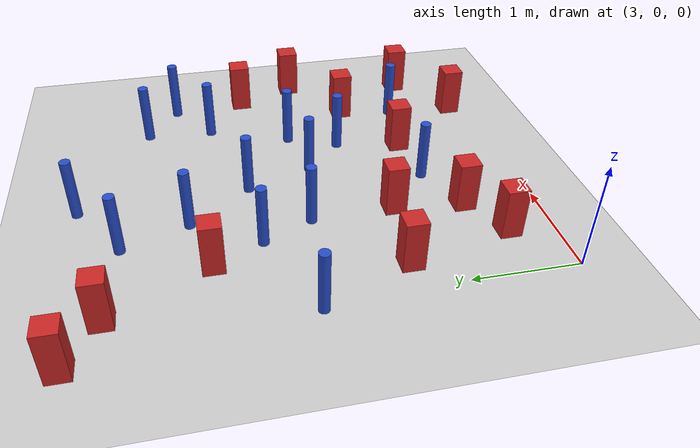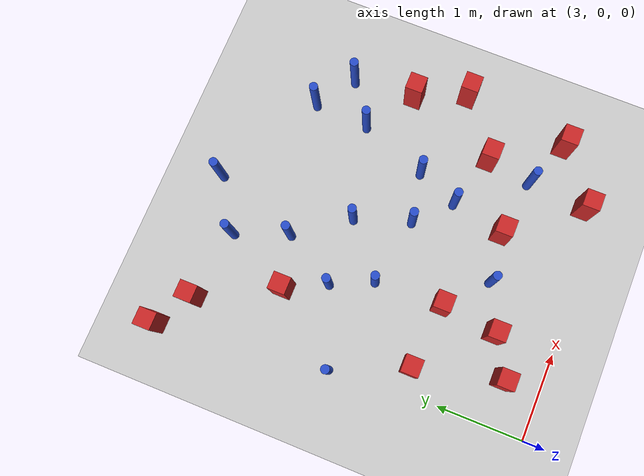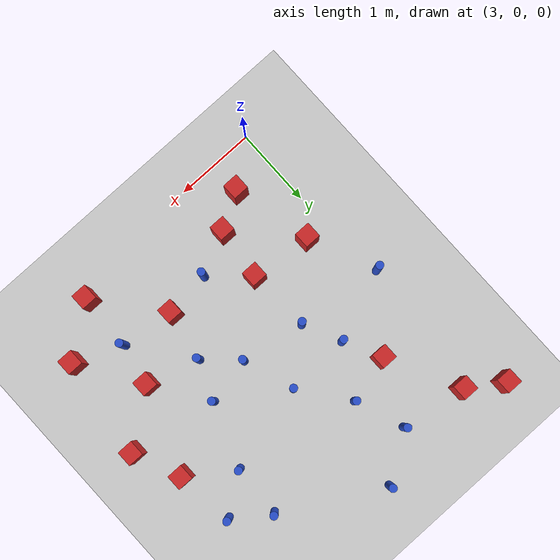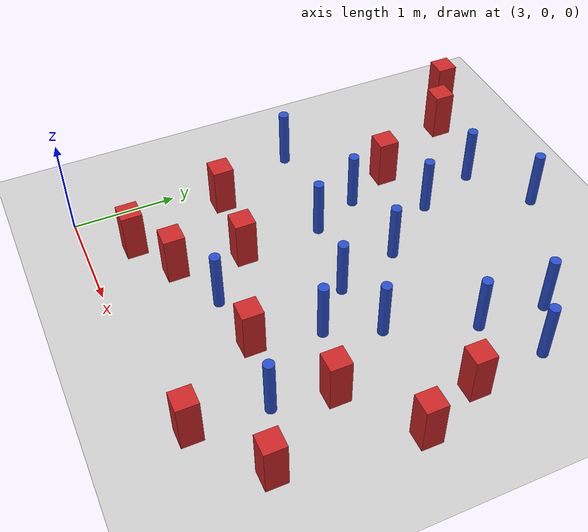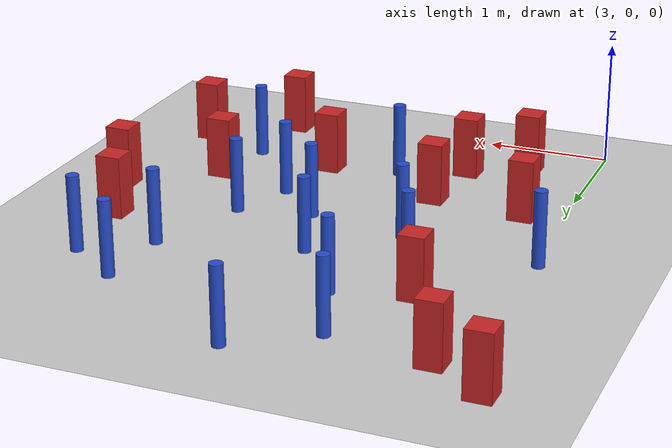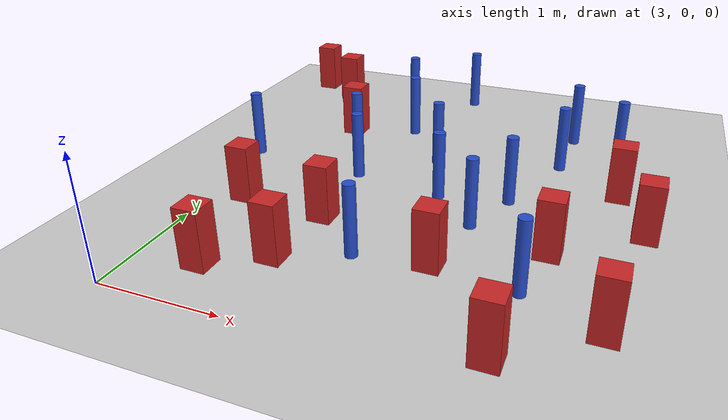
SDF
<sdf version="1.6">
 <world name="default">
  <model name="ground_plane">
   <static>1</static>
   <link name="link">
    <collision name="collision">
     <geometry><plane><normal>0 0 1</normal><size>100 100</size></plane></geometry>
     <surface><friction><ode><mu>100</mu><mu2>50</mu2></ode></friction></surface>
    </collision>
    <visual name="visual">
     <cast_shadows>0</cast_shadows>
     <geometry><plane><normal>0 0 1</normal><size>100 100</size></plane></geometry>
     <material>
      <ambient>1.0 1.0 1.0 1.0</ambient>
      <diffuse>0.8 0.8 0.8 1.0</diffuse>
      <specular>0.01 0.01 0.01 1.000000</specular>
     </material>
    </visual>
   </link>
  </model>
  <model name="pole_obstacle8">
   <static>true</static>
   <pose>5.74326832337 0.918242795768 -9.47619616065e-06 5.49618799737e-07 2.36310414061e-07 -1.550905348e-07</pose>
   <link name="link">
    <pose>0 0 0.3 0 -0 0</pose>
    <inertial>
     <mass>1</mass>
     <inertia><ixx>0.145833</ixx><ixy>0</ixy><ixz>0</ixz><iyy>0.145833</iyy><iyz>0</iyz><izz>0.125</izz></inertia>
    </inertial>
    <collision name="collision">
     <geometry><cylinder><radius>0.05</radius><length>.6</length></cylinder></geometry>
    </collision>
    <visual name="visual">
     <geometry><cylinder><radius>0.05</radius><length>.6</length></cylinder></geometry>
     <material>
      <script><name>Gazebo/Blue</name><uri>file://media/materials/scripts/gazebo.material</uri></script>
     </material>
    </visual>
   </link>
  </model>
  <model name="pole_obstacle13">
   <static>true</static>
   <pose>2.92305511422 2.25661610833 -9.47619616065e-06 5.49618799737e-07 2.36310414051e-07 -1.55090534807e-07</pose>
   <link name="link">
    <pose>0 0 0.3 0 -0 0</pose>
    <inertial>
     <mass>1</mass>
     <inertia><ixx>0.145833</ixx><ixy>0</ixy><ixz>0</ixz><iyy>0.145833</iyy><iyz>0</iyz><izz>0.125</izz></inertia>
    </inertial>
    <collision name="collision">
     <geometry><cylinder><radius>0.05</radius><length>.6</length></cylinder></geometry>
    </collision>
    <visual name="visual">
     <geometry><cylinder><radius>0.05</radius><length>.6</length></cylinder></geometry>
     <material>
      <script><name>Gazebo/Blue</name><uri>file://media/materials/scripts/gazebo.material</uri></script>
     </material>
    </visual>
   </link>
  </model>
  <model name="square_post_obstacle23">
   <static>true</static>
   <pose>3.53498907678 0.447461934969 -6.11067671241e-07 -5.50515727128e-06 -8.79689657224e-07 2.37013304536e-05</pose>
   <link name="link">
    <pose>0 0 0.25 0 -0 0</pose>
    <inertial>
     <mass>100</mass>
     <inertia>
      <ixx>0.166667</ixx>
      <ixy>0</ixy>
      <ixz>0</ixz>
      <iyy>0.166667</iyy>
      <iyz>0</iyz>
      <izz>0.166667</izz>
     </inertia>
    </inertial>
    <collision name="collision"><geometry><box><size>.2 .2 .5</size></box></geometry></collision>
    <visual name="visual">
     <geometry><box><size>.2 .2 .5</size></box></geometry>
     <material>
      <script><name>Gazebo/Red</name><uri>file://media/materials/scripts/gazebo.material</uri></script>
     </material>
    </visual>
   </link>
  </model>
  <model name="square_post_obstacle53">
   <static>true</static>
   <pose>5.07321738931 1.01666568384 -6.11067671241e-07 -5.50515727128e-06 -8.79689657224e-07 2.37013304536e-05</pose>
   <link name="link">
    <pose>0 0 0.25 0 -0 0</pose>
    <inertial>
     <mass>100</mass>
     <inertia>
      <ixx>0.166667</ixx>
      <ixy>0</ixy>
      <ixz>0</ixz>
      <iyy>0.166667</iyy>
      <iyz>0</iyz>
      <izz>0.166667</izz>
     </inertia>
    </inertial>
    <collision name="collision"><geometry><box><size>.2 .2 .5</size></box></geometry></collision>
    <visual name="visual">
     <geometry><box><size>.2 .2 .5</size></box></geometry>
     <material>
      <script><name>Gazebo/Red</name><uri>file://media/materials/scripts/gazebo.material</uri></script>
     </material>
    </visual>
   </link>
  </model>
  <model name="square_post_obstacle54">
   <static>true</static>
   <pose>3.57953814469 3.06855047184 -6.11067671241e-07 -5.50515727128e-06 -8.79689657224e-07 2.37013304536e-05</pose>
   <link name="link">
    <pose>0 0 0.25 0 -0 0</pose>
    <inertial>
     <mass>100</mass>
     <inertia>
      <ixx>0.166667</ixx>
      <ixy>0</ixy>
      <ixz>0</ixz>
      <iyy>0.166667</iyy>
      <iyz>0</iyz>
      <izz>0.166667</izz>
     </inertia>
    </inertial>
    <collision name="collision"><geometry><box><size>.2 .2 .5</size></box></geometry></collision>
    <visual name="visual">
     <geometry><box><size>.2 .2 .5</size></box></geometry>
     <material>
      <script><name>Gazebo/Red</name><uri>file://media/materials/scripts/gazebo.material</uri></script>
     </material>
    </visual>
   </link>
  </model>
  <model name="pole_obstacle52">
   <static>true</static>
   <pose>4.52747669376 4.24124237278 -9.47619616065e-06 5.49618799737e-07 2.36310414037e-07 -1.55090534814e-07</pose>
   <link name="link">
    <pose>0 0 0.3 0 -0 0</pose>
    <inertial>
     <mass>1</mass>
     <inertia><ixx>0.145833</ixx><ixy>0</ixy><ixz>0</ixz><iyy>0.145833</iyy><iyz>0</iyz><izz>0.125</izz></inertia>
    </inertial>
    <collision name="collision">
     <geometry><cylinder><radius>0.05</radius><length>.6</length></cylinder></geometry>
    </collision>
    <visual name="visual">
     <geometry><cylinder><radius>0.05</radius><length>.6</length></cylinder></geometry>
     <material>
      <script><name>Gazebo/Blue</name><uri>file://media/materials/scripts/gazebo.material</uri></script>
     </material>
    </visual>
   </link>
  </model>
  <model name="pole_obstacle54">
   <static>true</static>
   <pose>4.0205477465 2.13896941087 -9.47619616065e-06 5.49618799737e-07 2.36310414057e-07 -1.55090534802e-07</pose>
   <link name="link">
    <pose>0 0 0.3 0 -0 0</pose>
    <inertial>
     <mass>1</mass>
     <inertia><ixx>0.145833</ixx><ixy>0</ixy><ixz>0</ixz><iyy>0.145833</iyy><iyz>0</iyz><izz>0.125</izz></inertia>
    </inertial>
    <collision name="collision">
     <geometry><cylinder><radius>0.05</radius><length>.6</length></cylinder></geometry>
    </collision>
    <visual name="visual">
     <geometry><cylinder><radius>0.05</radius><length>.6</length></cylinder></geometry>
     <material>
      <script><name>Gazebo/Blue</name><uri>file://media/materials/scripts/gazebo.material</uri></script>
     </material>
    </visual>
   </link>
  </model>
  <model name="square_post_obstacle64">
   <static>true</static>
   <pose>2.70336702878 4.24247116568 -6.11067671241e-07 -5.50515727128e-06 -8.79689657224e-07 2.37013304536e-05</pose>
   <link name="link">
    <pose>0 0 0.25 0 -0 0</pose>
    <inertial>
     <mass>100</mass>
     <inertia>
      <ixx>0.166667</ixx>
      <ixy>0</ixy>
      <ixz>0</ixz>
      <iyy>0.166667</iyy>
      <iyz>0</iyz>
      <izz>0.166667</izz>
     </inertia>
    </inertial>
    <collision name="collision"><geometry><box><size>.2 .2 .5</size></box></geometry></collision>
    <visual name="visual">
     <geometry><box><size>.2 .2 .5</size></box></geometry>
     <material>
      <script><name>Gazebo/Red</name><uri>file://media/materials/scripts/gazebo.material</uri></script>
     </material>
    </visual>
   </link>
  </model>
  <model name="pole_obstacle66">
   <static>true</static>
   <pose>5.73989693912 3.56513327835 -9.47619616065e-06 5.49618799738e-07 2.36310414051e-07 -1.55090534805e-07</pose>
   <link name="link">
    <pose>0 0 0.3 0 -0 0</pose>
    <inertial>
     <mass>1</mass>
     <inertia><ixx>0.145833</ixx><ixy>0</ixy><ixz>0</ixz><iyy>0.145833</iyy><iyz>0</iyz><izz>0.125</izz></inertia>
    </inertial>
    <collision name="collision">
     <geometry><cylinder><radius>0.05</radius><length>.6</length></cylinder></geometry>
    </collision>
    <visual name="visual">
     <geometry><cylinder><radius>0.05</radius><length>.6</length></cylinder></geometry>
     <material>
      <script><name>Gazebo/Blue</name><uri>file://media/materials/scripts/gazebo.material</uri></script>
     </material>
    </visual>
   </link>
  </model>
  <model name="square_post_obstacle71">
   <static>true</static>
   <pose>5.69920581331 0.231424018608 -6.11067671241e-07 -5.50515727128e-06 -8.79689657224e-07 2.37013304536e-05</pose>
   <link name="link">
    <pose>0 0 0.25 0 -0 0</pose>
    <inertial>
     <mass>100</mass>
     <inertia>
      <ixx>0.166667</ixx>
      <ixy>0</ixy>
      <ixz>0</ixz>
      <iyy>0.166667</iyy>
      <iyz>0</iyz>
      <izz>0.166667</izz>
     </inertia>
    </inertial>
    <collision name="collision"><geometry><box><size>.2 .2 .5</size></box></geometry></collision>
    <visual name="visual">
     <geometry><box><size>.2 .2 .5</size></box></geometry>
     <material>
      <script><name>Gazebo/Red</name><uri>file://media/materials/scripts/gazebo.material</uri></script>
     </material>
    </visual>
   </link>
  </model>
  <model name="pole_obstacle89">
   <static>true</static>
   <pose>4.60513788556 2.64079014528 -9.47619616065e-06 5.49618799738e-07 2.36310414051e-07 -1.55090534805e-07</pose>
   <link name="link">
    <pose>0 0 0.3 0 -0 0</pose>
    <inertial>
     <mass>1</mass>
     <inertia><ixx>0.145833</ixx><ixy>0</ixy><ixz>0</ixz><iyy>0.145833</iyy><iyz>0</iyz><izz>0.125</izz></inertia>
    </inertial>
    <collision name="collision">
     <geometry><cylinder><radius>0.05</radius><length>.6</length></cylinder></geometry>
    </collision>
    <visual name="visual">
     <geometry><cylinder><radius>0.05</radius><length>.6</length></cylinder></geometry>
     <material>
      <script><name>Gazebo/Blue</name><uri>file://media/materials/scripts/gazebo.material</uri></script>
     </material>
    </visual>
   </link>
  </model>
  <model name="square_post_obstacle102">
   <static>true</static>
   <pose>6.4955229972 1.94023920971 -6.11067671241e-07 -5.50515727128e-06 -8.79689657224e-07 2.37013304536e-05</pose>
   <link name="link">
    <pose>0 0 0.25 0 -0 0</pose>
    <inertial>
     <mass>100</mass>
     <inertia>
      <ixx>0.166667</ixx>
      <ixy>0</ixy>
      <ixz>0</ixz>
      <iyy>0.166667</iyy>
      <iyz>0</iyz>
      <izz>0.166667</izz>
     </inertia>
    </inertial>
    <collision name="collision"><geometry><box><size>.2 .2 .5</size></box></geometry></collision>
    <visual name="visual">
     <geometry><box><size>.2 .2 .5</size></box></geometry>
     <material>
      <script><name>Gazebo/Red</name><uri>file://media/materials/scripts/gazebo.material</uri></script>
     </material>
    </visual>
   </link>
  </model>
  <model name="square_post_obstacle103">
   <static>true</static>
   <pose>3.12786077831 3.96272092216 -6.11067671241e-07 -5.50515727128e-06 -8.79689657224e-07 2.37013304536e-05</pose>
   <link name="link">
    <pose>0 0 0.25 0 -0 0</pose>
    <inertial>
     <mass>100</mass>
     <inertia>
      <ixx>0.166667</ixx>
      <ixy>0</ixy>
      <ixz>0</ixz>
      <iyy>0.166667</iyy>
      <iyz>0</iyz>
      <izz>0.166667</izz>
     </inertia>
    </inertial>
    <collision name="collision"><geometry><box><size>.2 .2 .5</size></box></geometry></collision>
    <visual name="visual">
     <geometry><box><size>.2 .2 .5</size></box></geometry>
     <material>
      <script><name>Gazebo/Red</name><uri>file://media/materials/scripts/gazebo.material</uri></script>
     </material>
    </visual>
   </link>
  </model>
  <model name="pole_obstacle126">
   <static>true</static>
   <pose>3.94105519589 3.8473493145 -9.47619616065e-06 5.49618799737e-07 2.36310414051e-07 -1.55090534807e-07</pose>
   <link name="link">
    <pose>0 0 0.3 0 -0 0</pose>
    <inertial>
     <mass>1</mass>
     <inertia><ixx>0.145833</ixx><ixy>0</ixy><ixz>0</ixz><iyy>0.145833</iyy><iyz>0</iyz><izz>0.125</izz></inertia>
    </inertial>
    <collision name="collision">
     <geometry><cylinder><radius>0.05</radius><length>.6</length></cylinder></geometry>
    </collision>
    <visual name="visual">
     <geometry><cylinder><radius>0.05</radius><length>.6</length></cylinder></geometry>
     <material>
      <script><name>Gazebo/Blue</name><uri>file://media/materials/scripts/gazebo.material</uri></script>
     </material>
    </visual>
   </link>
  </model>
  <model name="pole_obstacle128">
   <static>true</static>
   <pose>4.81936742997 2.00469982125 -9.47619616065e-06 5.49618799737e-07 2.36310414065e-07 -1.55090534797e-07</pose>
   <link name="link">
    <pose>0 0 0.3 0 -0 0</pose>
    <inertial>
     <mass>1</mass>
     <inertia><ixx>0.145833</ixx><ixy>0</ixy><ixz>0</ixz><iyy>0.145833</iyy><iyz>0</iyz><izz>0.125</izz></inertia>
    </inertial>
    <collision name="collision">
     <geometry><cylinder><radius>0.05</radius><length>.6</length></cylinder></geometry>
    </collision>
    <visual name="visual">
     <geometry><cylinder><radius>0.05</radius><length>.6</length></cylinder></geometry>
     <material>
      <script><name>Gazebo/Blue</name><uri>file://media/materials/scripts/gazebo.material</uri></script>
     </material>
    </visual>
   </link>
  </model>
  <model name="pole_obstacle135">
   <static>true</static>
   <pose>5.69951770135 2.91558499897 -9.47619616065e-06 5.49618799738e-07 2.36310414051e-07 -1.55090534805e-07</pose>
   <link name="link">
    <pose>0 0 0.3 0 -0 0</pose>
    <inertial>
     <mass>1</mass>
     <inertia><ixx>0.145833</ixx><ixy>0</ixy><ixz>0</ixz><iyy>0.145833</iyy><iyz>0</iyz><izz>0.125</izz></inertia>
    </inertial>
    <collision name="collision">
     <geometry><cylinder><radius>0.05</radius><length>.6</length></cylinder></geometry>
    </collision>
    <visual name="visual">
     <geometry><cylinder><radius>0.05</radius><length>.6</length></cylinder></geometry>
     <material>
      <script><name>Gazebo/Blue</name><uri>file://media/materials/scripts/gazebo.material</uri></script>
     </material>
    </visual>
   </link>
  </model>
  <model name="pole_obstacle138">
   <static>true</static>
   <pose>3.80311414505 2.61045122616 -9.47619616065e-06 5.49618799737e-07 2.36310414051e-07 -1.55090534807e-07</pose>
   <link name="link">
    <pose>0 0 0.3 0 -0 0</pose>
    <inertial>
     <mass>1</mass>
     <inertia><ixx>0.145833</ixx><ixy>0</ixy><ixz>0</ixz><iyy>0.145833</iyy><iyz>0</iyz><izz>0.125</izz></inertia>
    </inertial>
    <collision name="collision">
     <geometry><cylinder><radius>0.05</radius><length>.6</length></cylinder></geometry>
    </collision>
    <visual name="visual">
     <geometry><cylinder><radius>0.05</radius><length>.6</length></cylinder></geometry>
     <material>
      <script><name>Gazebo/Blue</name><uri>file://media/materials/scripts/gazebo.material</uri></script>
     </material>
    </visual>
   </link>
  </model>
  <model name="square_post_obstacle136">
   <static>true</static>
   <pose>6.25403904061 2.5259160619 -6.11067671241e-07 -5.50515727128e-06 -8.79689657224e-07 2.37013304536e-05</pose>
   <link name="link">
    <pose>0 0 0.25 0 -0 0</pose>
    <inertial>
     <mass>100</mass>
     <inertia>
      <ixx>0.166667</ixx>
      <ixy>0</ixy>
      <ixz>0</ixz>
      <iyy>0.166667</iyy>
      <iyz>0</iyz>
      <izz>0.166667</izz>
     </inertia>
    </inertial>
    <collision name="collision"><geometry><box><size>.2 .2 .5</size></box></geometry></collision>
    <visual name="visual">
     <geometry><box><size>.2 .2 .5</size></box></geometry>
     <material>
      <script><name>Gazebo/Red</name><uri>file://media/materials/scripts/gazebo.material</uri></script>
     </material>
    </visual>
   </link>
  </model>
  <model name="square_post_obstacle147">
   <static>true</static>
   <pose>3.97800154921 0.704740509099 -6.11067671241e-07 -5.50515727128e-06 -8.79689657224e-07 2.37013304536e-05</pose>
   <link name="link">
    <pose>0 0 0.25 0 -0 0</pose>
    <inertial>
     <mass>100</mass>
     <inertia>
      <ixx>0.166667</ixx>
      <ixy>0</ixy>
      <ixz>0</ixz>
      <iyy>0.166667</iyy>
      <iyz>0</iyz>
      <izz>0.166667</izz>
     </inertia>
    </inertial>
    <collision name="collision"><geometry><box><size>.2 .2 .5</size></box></geometry></collision>
    <visual name="visual">
     <geometry><box><size>.2 .2 .5</size></box></geometry>
     <material>
      <script><name>Gazebo/Red</name><uri>file://media/materials/scripts/gazebo.material</uri></script>
     </material>
    </visual>
   </link>
  </model>
  <model name="square_post_obstacle148">
   <static>true</static>
   <pose>6.3202442248 0.690347696628 -6.11067671241e-07 -5.50515727128e-06 -8.79689657224e-07 2.37013304536e-05</pose>
   <link name="link">
    <pose>0 0 0.25 0 -0 0</pose>
    <inertial>
     <mass>100</mass>
     <inertia>
      <ixx>0.166667</ixx>
      <ixy>0</ixy>
      <ixz>0</ixz>
      <iyy>0.166667</iyy>
      <iyz>0</iyz>
      <izz>0.166667</izz>
     </inertia>
    </inertial>
    <collision name="collision"><geometry><box><size>.2 .2 .5</size></box></geometry></collision>
    <visual name="visual">
     <geometry><box><size>.2 .2 .5</size></box></geometry>
     <material>
      <script><name>Gazebo/Red</name><uri>file://media/materials/scripts/gazebo.material</uri></script>
     </material>
    </visual>
   </link>
  </model>
  <model name="square_post_obstacle150">
   <static>true</static>
   <pose>4.05619263658 1.35322422375 -6.11067671241e-07 -5.50515727128e-06 -8.79689657224e-07 2.37013304536e-05</pose>
   <link name="link">
    <pose>0 0 0.25 0 -0 0</pose>
    <inertial>
     <mass>100</mass>
     <inertia>
      <ixx>0.166667</ixx>
      <ixy>0</ixy>
      <ixz>0</ixz>
      <iyy>0.166667</iyy>
      <iyz>0</iyz>
      <izz>0.166667</izz>
     </inertia>
    </inertial>
    <collision name="collision"><geometry><box><size>.2 .2 .5</size></box></geometry></collision>
    <visual name="visual">
     <geometry><box><size>.2 .2 .5</size></box></geometry>
     <material>
      <script><name>Gazebo/Red</name><uri>file://media/materials/scripts/gazebo.material</uri></script>
     </material>
    </visual>
   </link>
  </model>
  <model name="pole_obstacle168">
   <static>true</static>
   <pose>5.40024340312 2.12261932179 -9.47619616065e-06 5.49618799738e-07 2.36310414051e-07 -1.55090534805e-07</pose>
   <link name="link">
    <pose>0 0 0.3 0 -0 0</pose>
    <inertial>
     <mass>1</mass>
     <inertia><ixx>0.145833</ixx><ixy>0</ixy><ixz>0</ixz><iyy>0.145833</iyy><iyz>0</iyz><izz>0.125</izz></inertia>
    </inertial>
    <collision name="collision">
     <geometry><cylinder><radius>0.05</radius><length>.6</length></cylinder></geometry>
    </collision>
    <visual name="visual">
     <geometry><cylinder><radius>0.05</radius><length>.6</length></cylinder></geometry>
     <material>
      <script><name>Gazebo/Blue</name><uri>file://media/materials/scripts/gazebo.material</uri></script>
     </material>
    </visual>
   </link>
  </model>
  <model name="square_post_obstacle168">
   <static>true</static>
   <pose>3.29392305216 1.42887726743 -6.11067671241e-07 -5.50515727128e-06 -8.79689657224e-07 2.37013304536e-05</pose>
   <link name="link">
    <pose>0 0 0.25 0 -0 0</pose>
    <inertial>
     <mass>100</mass>
     <inertia>
      <ixx>0.166667</ixx>
      <ixy>0</ixy>
      <ixz>0</ixz>
      <iyy>0.166667</iyy>
      <iyz>0</iyz>
      <izz>0.166667</izz>
     </inertia>
    </inertial>
    <collision name="collision"><geometry><box><size>.2 .2 .5</size></box></geometry></collision>
    <visual name="visual">
     <geometry><box><size>.2 .2 .5</size></box></geometry>
     <material>
      <script><name>Gazebo/Red</name><uri>file://media/materials/scripts/gazebo.material</uri></script>
     </material>
    </visual>
   </link>
  </model>
  <model name="pole_obstacle187">
   <static>true</static>
   <pose>5.20012495346 1.63727294255 -9.47619616065e-06 5.49618799738e-07 2.36310414071e-07 -1.55090534796e-07</pose>
   <link name="link">
    <pose>0 0 0.3 0 -0 0</pose>
    <inertial>
     <mass>1</mass>
     <inertia><ixx>0.145833</ixx><ixy>0</ixy><ixz>0</ixz><iyy>0.145833</iyy><iyz>0</iyz><izz>0.125</izz></inertia>
    </inertial>
    <collision name="collision">
     <geometry><cylinder><radius>0.05</radius><length>.6</length></cylinder></geometry>
    </collision>
    <visual name="visual">
     <geometry><cylinder><radius>0.05</radius><length>.6</length></cylinder></geometry>
     <material>
      <script><name>Gazebo/Blue</name><uri>file://media/materials/scripts/gazebo.material</uri></script>
     </material>
    </visual>
   </link>
  </model>
  <model name="square_post_obstacle201">
   <static>true</static>
   <pose>5.84264917918 1.45301400065 -6.11067671241e-07 -5.50515727128e-06 -8.79689657224e-07 2.37013304536e-05</pose>
   <link name="link">
    <pose>0 0 0.25 0 -0 0</pose>
    <inertial>
     <mass>100</mass>
     <inertia>
      <ixx>0.166667</ixx>
      <ixy>0</ixy>
      <ixz>0</ixz>
      <iyy>0.166667</iyy>
      <iyz>0</iyz>
      <izz>0.166667</izz>
     </inertia>
    </inertial>
    <collision name="collision"><geometry><box><size>.2 .2 .5</size></box></geometry></collision>
    <visual name="visual">
     <geometry><box><size>.2 .2 .5</size></box></geometry>
     <material>
      <script><name>Gazebo/Red</name><uri>file://media/materials/scripts/gazebo.material</uri></script>
     </material>
    </visual>
   </link>
  </model>
  <model name="pole_obstacle198">
   <static>true</static>
   <pose>6.17905247559 3.25449383906 -9.47619616065e-06 5.49618799738e-07 2.36310414051e-07 -1.55090534805e-07</pose>
   <link name="link">
    <pose>0 0 0.3 0 -0 0</pose>
    <inertial>
     <mass>1</mass>
     <inertia><ixx>0.145833</ixx><ixy>0</ixy><ixz>0</ixz><iyy>0.145833</iyy><iyz>0</iyz><izz>0.125</izz></inertia>
    </inertial>
    <collision name="collision">
     <geometry><cylinder><radius>0.05</radius><length>.6</length></cylinder></geometry>
    </collision>
    <visual name="visual">
     <geometry><cylinder><radius>0.05</radius><length>.6</length></cylinder></geometry>
     <material>
      <script><name>Gazebo/Blue</name><uri>file://media/materials/scripts/gazebo.material</uri></script>
     </material>
    </visual>
   </link>
  </model>
  <model name="pole_obstacle217">
   <static>true</static>
   <pose>4.16678930035 3.23237478074 -9.47619616065e-06 5.49618799738e-07 2.36310414051e-07 -1.55090534805e-07</pose>
   <link name="link">
    <pose>0 0 0.3 0 -0 0</pose>
    <inertial>
     <mass>1</mass>
     <inertia><ixx>0.145833</ixx><ixy>0</ixy><ixz>0</ixz><iyy>0.145833</iyy><iyz>0</iyz><izz>0.125</izz></inertia>
    </inertial>
    <collision name="collision">
     <geometry><cylinder><radius>0.05</radius><length>.6</length></cylinder></geometry>
    </collision>
    <visual name="visual">
     <geometry><cylinder><radius>0.05</radius><length>.6</length></cylinder></geometry>
     <material>
      <script><name>Gazebo/Blue</name><uri>file://media/materials/scripts/gazebo.material</uri></script>
     </material>
    </visual>
   </link>
  </model>
  <model name="pole_obstacle228">
   <static>true</static>
   <pose>4.49937000939 0.93618602078 -9.47619616065e-06 5.49618799737e-07 2.36310414061e-07 -1.550905348e-07</pose>
   <link name="link">
    <pose>0 0 0.3 0 -0 0</pose>
    <inertial>
     <mass>1</mass>
     <inertia><ixx>0.145833</ixx><ixy>0</ixy><ixz>0</ixz><iyy>0.145833</iyy><iyz>0</iyz><izz>0.125</izz></inertia>
    </inertial>
    <collision name="collision">
     <geometry><cylinder><radius>0.05</radius><length>.6</length></cylinder></geometry>
    </collision>
    <visual name="visual">
     <geometry><cylinder><radius>0.05</radius><length>.6</length></cylinder></geometry>
     <material>
      <script><name>Gazebo/Blue</name><uri>file://media/materials/scripts/gazebo.material</uri></script>
     </material>
    </visual>
   </link>
  </model>
 </world>
</sdf>
